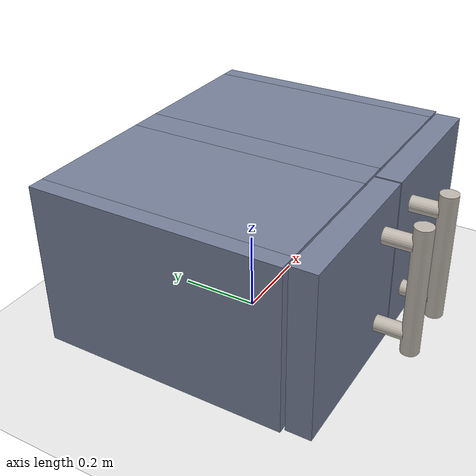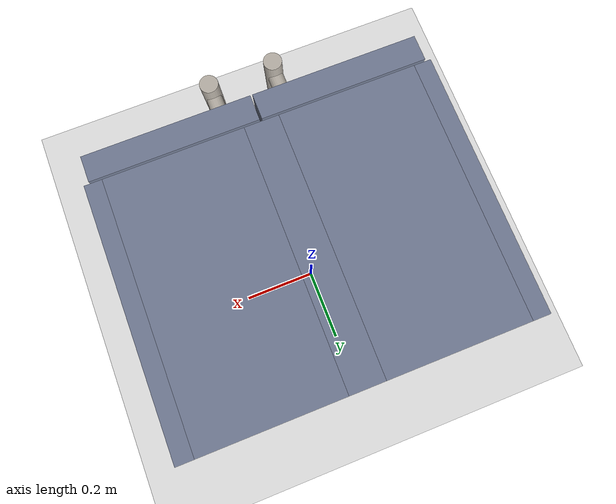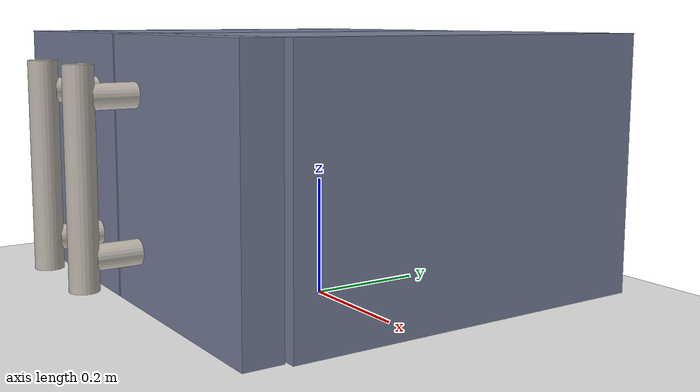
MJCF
<mujoco model="hinge cabinet">
    <compiler angle="radian"/>
    <include file='../scenes/basic_scene.xml'/>
    <include file="../kitchen/assets/hingecabinet_asset.xml"/>

    <worldbody>

        <body pos="0 0 .25">
		    <include file="../kitchen/assets/hingecabinet_chain.xml"/>
        </body>

    </worldbody>

</mujoco>

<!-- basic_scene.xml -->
<mujocoinclude>
    <asset>
        <texture name="skybox" type="skybox" builtin="gradient" rgb1=".08 .09 .10" rgb2="0 0 0"
               width="800" height="800" mark="random" markrgb=".8 .8 .8"/>

        <texture name="texplane" type="2d" height="1" width="1" file="../scenes/textures/white_marble_tile2.png" />
        <material name='MatPlane' reflectance='0.05' texture="texplane" texrepeat="4 4" texuniform="true"/>
    </asset>

    <visual>
        <quality shadowsize="4048"/>
    </visual>

    <worldbody>
        <light directional='true' diffuse='.3 .3 .3' specular='0.3 0.3 0.3' pos='-1 -1 1' dir='1 1 -1'/>
        <light directional='true' diffuse='.3 .3 .3' specular='0.3 0.3 0.3' pos='1 -1 1' dir='-1 1 -1'/>
        <light directional='true' diffuse='.3 .3 .3' specular='0.3 0.3 0.3' pos='0 1 1' dir='0 -1 -1'/>
        <geom name='floor' pos='0 0 0' size='5 5 .1' conaffinity='1' contype='1' type='plane' material="MatPlane" condim='3'/>
        <site name='xaxis' pos='.5 0 0' size='.005 .5' type='capsule' rgba='1 0 0 .25' euler='0 1.57 0' group='3'/>
        <site name='yaxis' pos='0 .5 0' size='.005 .5' type='capsule' rgba='0 1 0 .25' euler='1.57 0 0' group='3'/>
    </worldbody>
</mujocoinclude>

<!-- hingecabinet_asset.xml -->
<mujocoinclude>

    <compiler inertiafromgeom="auto" inertiagrouprange="4 4" angle="radian"/>

    <asset>
        <texture name="T_hinge_wood" type="cube" height="1" width="1" file="../kitchen/textures/wood1.png"/>
        <texture name="T_hinge_metal" type="cube" height="1" width="1" file="../kitchen/textures/metal1.png"/>

        <material name="M_hinge_wood" texture="T_hinge_wood" texrepeat="3 3" reflectance="0.7" shininess=".4" texuniform="false"/>
        <material name="M_hinge_metal" texture="T_hinge_metal" texrepeat="3 3" reflectance="0.7" shininess=".4" texuniform="false"/>
        <material name="M_hinge_blue" rgba=".46 .5 .6 1" reflectance="0.7" shininess=".4"/>
        <material name="hinge_collision_blue" rgba="0.3 0.3 1.0 0.5" shininess="0" specular="0"/>
    </asset>

    <default>
        <default class="hingecabinet">
            <joint damping="2" frictionloss="2" armature=".01" limited="true"/>
            <geom conaffinity="0" contype="0" group="1" material="M_hinge_wood" type="mesh"/>
            <default class="hinge_collision">
                <geom conaffinity="1" condim="3" contype="0" group="4" margin="0.001" material="hinge_collision_blue" solimp=".8 .9 .01" solref=".02 1"/>
            </default>
        </default>
    </default>

</mujocoinclude>

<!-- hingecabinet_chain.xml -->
<mujocoinclude>
    <body name="hingecab" childclass="hingecabinet">
        <geom material="M_hinge_blue" size="0.04 0.3 0.2" type="box"/>
        <geom material="M_hinge_blue" pos="0.38 0 0" size="0.02 0.3 0.2" type="box"/>
        <geom material="M_hinge_blue" pos="-0.38 0 0" size="0.02 0.3 0.2" type="box"/>
        <geom material="M_hinge_blue" pos="-0.2 0 0.18" size="0.16 0.3 0.02" type="box"/>
        <geom material="M_hinge_blue" pos="-0.2 0 -0.18" size="0.16 0.3 0.02" type="box"/>
        <geom material="M_hinge_blue" pos="0.2 0 -0.18" size="0.16 0.3 0.02" type="box"/>
        <geom material="M_hinge_blue" pos="0.2 0 0.18" size="0.16 0.3 0.02" type="box"/>
        <geom material="M_hinge_blue" pos="-0.2 0.28 0" size="0.16 0.02 0.16" type="box"/>
        <geom material="M_hinge_blue" pos="0.2 0.28 0" size="0.16 0.02 0.16" type="box"/>

        <geom class="hinge_collision" size="0.04 0.3 0.2" type="box" mass=".3"/>
        <geom class="hinge_collision" pos="0.38 0 0" size="0.02 0.3 0.2" type="box" mass=".2"/>
        <geom class="hinge_collision" pos="-0.38 0 0" size="0.02 0.3 0.2" type="box" mass=".2"/>
        <geom class="hinge_collision" pos="-0.2 0 0.18" size="0.16 0.3 0.02" type="box" mass=".2"/>
        <geom class="hinge_collision" pos="-0.2 0 -0.18" size="0.16 0.3 0.02" type="box" mass=".2"/>
        <geom class="hinge_collision" pos="0.2 0 -0.18" size="0.16 0.3 0.02" type="box" mass=".2"/>
        <geom class="hinge_collision" pos="0.2 0 0.18" size="0.16 0.3 0.02" type="box" mass=".2"/>
        <geom class="hinge_collision" pos="-0.2 0.28 0" size="0.16 0.02 0.16" type="box" mass=".2"/>
        <geom class="hinge_collision" pos="0.2 0.28 0" size="0.16 0.02 0.16" type="box" mass=".2"/>
        <body name="hingeleftdoor" pos="-0.38 -0.32 0">
            <joint axis="0 0 1" name="leftdoorhinge" range="-1.57 0"/>
            <geom material="M_hinge_metal" pos="0.302 -0.128 0" size="0.022 0.16" type="cylinder"/>
            <geom material="M_hinge_metal" pos="0.302 -0.061 0.114" euler="1.57 0 0" size="0.019 0.053 0.02" type="cylinder"/>
            <geom material="M_hinge_metal" pos="0.302 -0.061 -0.114" euler="1.57 0 0" size="0.019 0.053 0.02" type="cylinder"/>
            <geom material="M_hinge_blue" pos="0.184 -.015 0" size="0.193 0.03 0.2" type="box"/>

            <geom class="hinge_collision" pos="0.184 -.015 0" size="0.193 0.03 0.2" type="box" mass=".2"/>
            <geom class="hinge_collision" pos="0.302 -0.128 0" size="0.022 0.16" type="cylinder" mass=".1"/>
            <geom class="hinge_collision" pos="0.302 -0.061 0.114" euler="1.57 0 0" size="0.019 0.053 0.02" type="cylinder" mass=".02"/>
            <geom class="hinge_collision" pos="0.302 -0.061 -0.114" euler="1.57 0 0" size="0.019 0.053 0.02" type="cylinder" mass=".02"/>
            <site type="sphere" name="hinge_site1" pos="0.302 -0.128 0" size=".01" group="3" rgba="1 0 0 1"/>
        </body>
        <body name="hingerightdoor" pos="0.38 -0.32 0">
            <joint axis="0 0 1" name="rightdoorhinge" range="0 1.57"/>
            <geom material="M_hinge_blue" pos="-0.185 -.015 0" size="0.193 0.03 0.2" type="box"/>
            <geom material="M_hinge_metal" pos="-0.302 -0.128 0" size="0.022 0.16" type="cylinder"/>
            <geom material="M_hinge_metal" pos="-0.302 -0.061 -0.114" euler="1.57 0 0" size="0.019 0.053 0.02" type="cylinder"/>
            <geom material="M_hinge_metal" pos="-0.302 -0.061 0.114" euler="1.57 0 0" size="0.019 0.053 0.02" type="cylinder"/>

            <geom class="hinge_collision" pos="-0.302 -0.128 0" size="0.022 0.16" type="cylinder" mass=".1"/>
            <geom class="hinge_collision" pos="-0.302 -0.061 -0.114" euler="1.57 0 0" size="0.019 0.053 0.02" type="cylinder" mass=".02"/>
            <geom class="hinge_collision" pos="-0.302 -0.061 0.114" euler="1.57 0 0" size="0.019 0.053 0.02" type="cylinder" mass=".02"/>
            <geom class="hinge_collision" pos="-0.185 -.015 0" size="0.193 0.03 0.2" type="box" mass=".2"/>
            <site type="sphere" name="hinge_site2" pos="-0.302 -0.128 0" size=".01" group="3" rgba="0 1 0 1"/>
        </body>
    </body>
</mujocoinclude>
